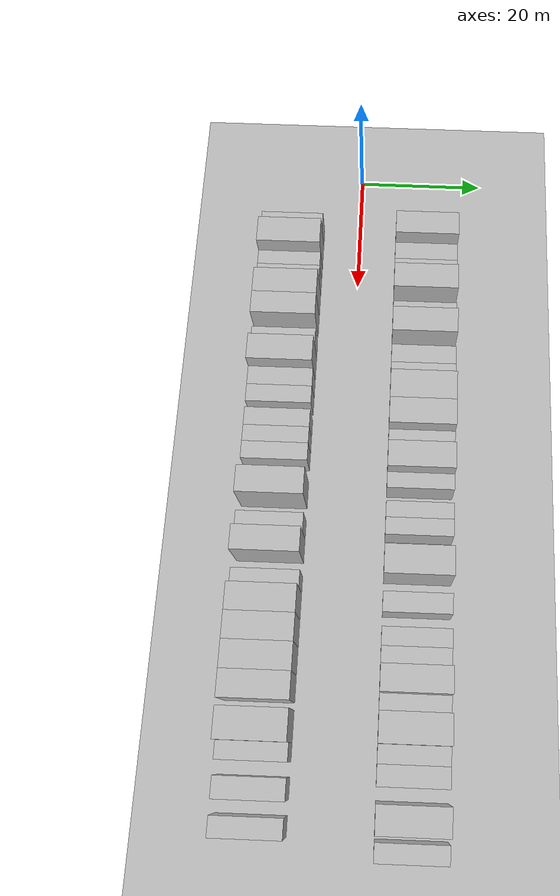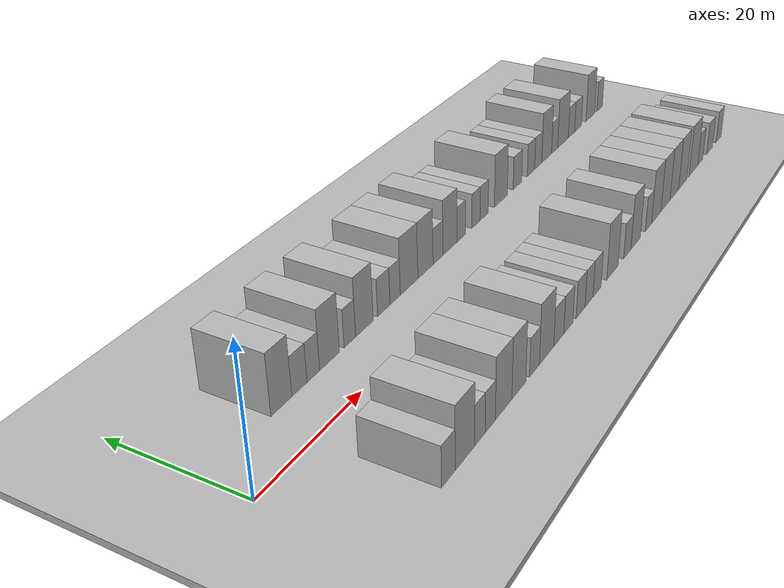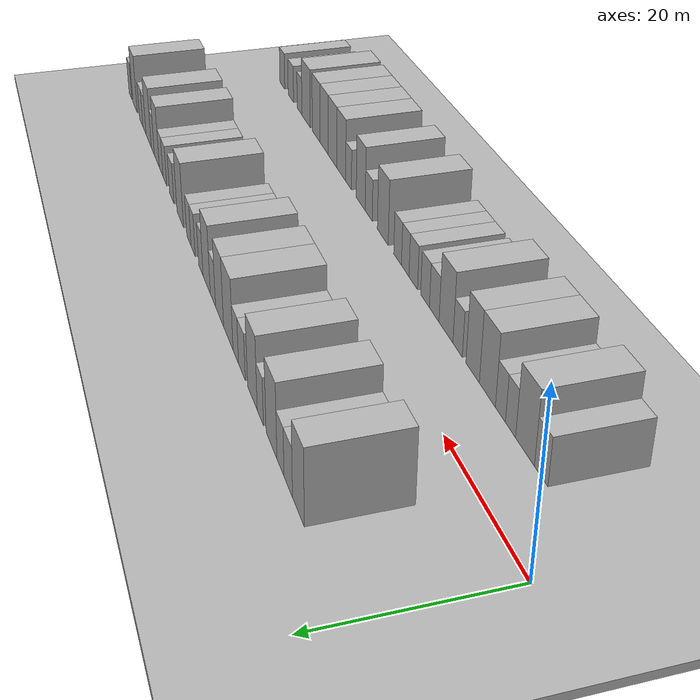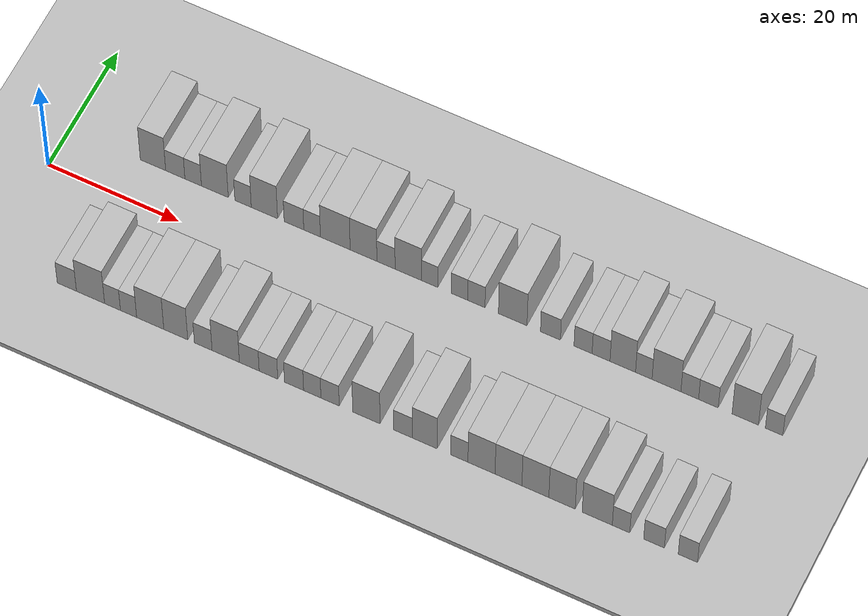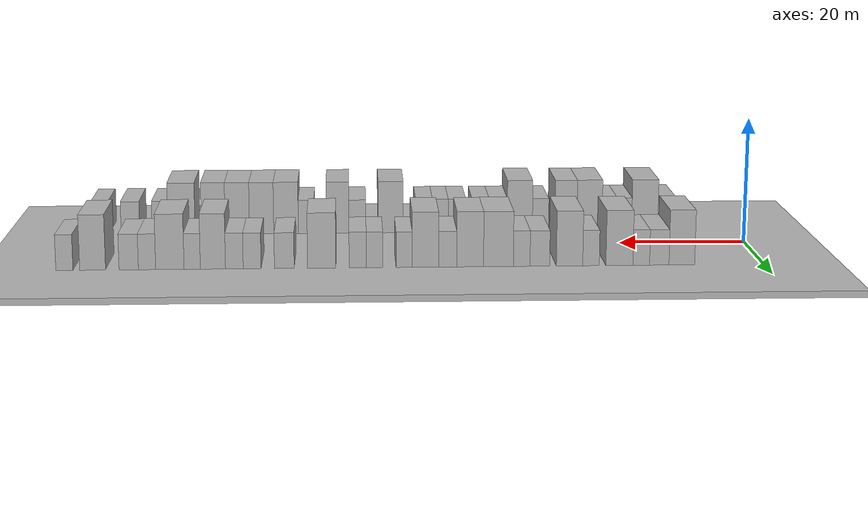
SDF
<sdf version="1.6">
 <world name="default">
  <include><name>ground_plane_1</name><uri>model://HANNAS_ground_plane</uri></include>
  <include>
   <name>ground_plane_2</name>
   <uri>model://HANNAS_ground_plane</uri>
   <pose>100 0 0  0 0 0</pose>
  </include>
  <model name="building_1">
   <static>1</static>
   <pose>12.9525 11.0000 0 0.000000 0.000000 1.570796</pose>
   <link name="link">
    <pose>0 0 4.50 0 0 0</pose>
    <collision name="collision"><geometry><box><size>10.0000 3.9050 9.0000</size></box></geometry></collision>
    <visual name="visual">
     <cast_shadows>0</cast_shadows>
     <geometry><box><size>10.0000 3.9050 9.0000</size></box></geometry>
     <material>
      <script>
       <uri>model://HANNAS_wall/materials/scripts</uri>
       <uri>model://HANNAS_wall/materials/textures</uri>
       <name>vrc/HANNAS_wall</name>
      </script>
     </material>
    </visual>
   </link>
  </model>
  <model name="building_2">
   <static>1</static>
   <pose>16.3775 11.0000 0 0.000000 0.000000 1.570796</pose>
   <link name="link">
    <pose>0 0 3.00 0 0 0</pose>
    <collision name="collision"><geometry><box><size>10.0000 2.9451 6.0000</size></box></geometry></collision>
    <visual name="visual">
     <cast_shadows>0</cast_shadows>
     <geometry><box><size>10.0000 2.9451 6.0000</size></box></geometry>
     <material>
      <script>
       <uri>model://HANNAS_wall/materials/scripts</uri>
       <uri>model://HANNAS_wall/materials/textures</uri>
       <name>vrc/HANNAS_wall</name>
      </script>
     </material>
    </visual>
   </link>
  </model>
  <model name="building_3">
   <static>1</static>
   <pose>19.1167 11.0000 0 0.000000 0.000000 1.570796</pose>
   <link name="link">
    <pose>0 0 3.00 0 0 0</pose>
    <collision name="collision"><geometry><box><size>10.0000 2.5333 6.0000</size></box></geometry></collision>
    <visual name="visual">
     <cast_shadows>0</cast_shadows>
     <geometry><box><size>10.0000 2.5333 6.0000</size></box></geometry>
     <material>
      <script>
       <uri>model://HANNAS_wall/materials/scripts</uri>
       <uri>model://HANNAS_wall/materials/textures</uri>
       <name>vrc/HANNAS_wall</name>
      </script>
     </material>
    </visual>
   </link>
  </model>
  <model name="building_4">
   <static>1</static>
   <pose>22.4323 11.0000 0 0.000000 0.000000 1.570796</pose>
   <link name="link">
    <pose>0 0 4.50 0 0 0</pose>
    <collision name="collision"><geometry><box><size>10.0000 4.0978 9.0000</size></box></geometry></collision>
    <visual name="visual">
     <cast_shadows>0</cast_shadows>
     <geometry><box><size>10.0000 4.0978 9.0000</size></box></geometry>
     <material>
      <script>
       <uri>model://HANNAS_wall/materials/scripts</uri>
       <uri>model://HANNAS_wall/materials/textures</uri>
       <name>vrc/HANNAS_wall</name>
      </script>
     </material>
    </visual>
   </link>
  </model>
  <model name="building_5">
   <static>1</static>
   <pose>26.7356 11.0000 0 0.000000 0.000000 1.570796</pose>
   <link name="link">
    <pose>0 0 3.00 0 0 0</pose>
    <collision name="collision"><geometry><box><size>10.0000 2.5089 6.0000</size></box></geometry></collision>
    <visual name="visual">
     <cast_shadows>0</cast_shadows>
     <geometry><box><size>10.0000 2.5089 6.0000</size></box></geometry>
     <material>
      <script>
       <uri>model://HANNAS_wall/materials/scripts</uri>
       <uri>model://HANNAS_wall/materials/textures</uri>
       <name>vrc/HANNAS_wall</name>
      </script>
     </material>
    </visual>
   </link>
  </model>
  <model name="building_6">
   <static>1</static>
   <pose>29.9888 11.0000 0 0.000000 0.000000 1.570796</pose>
   <link name="link">
    <pose>0 0 4.50 0 0 0</pose>
    <collision name="collision"><geometry><box><size>10.0000 3.9976 9.0000</size></box></geometry></collision>
    <visual name="visual">
     <cast_shadows>0</cast_shadows>
     <geometry><box><size>10.0000 3.9976 9.0000</size></box></geometry>
     <material>
      <script>
       <uri>model://HANNAS_wall/materials/scripts</uri>
       <uri>model://HANNAS_wall/materials/textures</uri>
       <name>vrc/HANNAS_wall</name>
      </script>
     </material>
    </visual>
   </link>
  </model>
  <model name="building_7">
   <static>1</static>
   <pose>34.4759 11.0000 0 0.000000 0.000000 1.570796</pose>
   <link name="link">
    <pose>0 0 3.00 0 0 0</pose>
    <collision name="collision"><geometry><box><size>10.0000 2.9765 6.0000</size></box></geometry></collision>
    <visual name="visual">
     <cast_shadows>0</cast_shadows>
     <geometry><box><size>10.0000 2.9765 6.0000</size></box></geometry>
     <material>
      <script>
       <uri>model://HANNAS_wall/materials/scripts</uri>
       <uri>model://HANNAS_wall/materials/textures</uri>
       <name>vrc/HANNAS_wall</name>
      </script>
     </material>
    </visual>
   </link>
  </model>
  <model name="building_8">
   <static>1</static>
   <pose>37.2237 11.0000 0 0.000000 0.000000 1.570796</pose>
   <link name="link">
    <pose>0 0 3.00 0 0 0</pose>
    <collision name="collision"><geometry><box><size>10.0000 2.5192 6.0000</size></box></geometry></collision>
    <visual name="visual">
     <cast_shadows>0</cast_shadows>
     <geometry><box><size>10.0000 2.5192 6.0000</size></box></geometry>
     <material>
      <script>
       <uri>model://HANNAS_wall/materials/scripts</uri>
       <uri>model://HANNAS_wall/materials/textures</uri>
       <name>vrc/HANNAS_wall</name>
      </script>
     </material>
    </visual>
   </link>
  </model>
  <model name="building_9">
   <static>1</static>
   <pose>40.7293 11.0000 0 0.000000 0.000000 1.570796</pose>
   <link name="link">
    <pose>0 0 4.50 0 0 0</pose>
    <collision name="collision"><geometry><box><size>10.0000 4.4920 9.0000</size></box></geometry></collision>
    <visual name="visual">
     <cast_shadows>0</cast_shadows>
     <geometry><box><size>10.0000 4.4920 9.0000</size></box></geometry>
     <material>
      <script>
       <uri>model://HANNAS_wall/materials/scripts</uri>
       <uri>model://HANNAS_wall/materials/textures</uri>
       <name>vrc/HANNAS_wall</name>
      </script>
     </material>
    </visual>
   </link>
  </model>
  <model name="building_10">
   <static>1</static>
   <pose>44.9919 11.0000 0 0.000000 0.000000 1.570796</pose>
   <link name="link">
    <pose>0 0 4.50 0 0 0</pose>
    <collision name="collision"><geometry><box><size>10.0000 4.0332 9.0000</size></box></geometry></collision>
    <visual name="visual">
     <cast_shadows>0</cast_shadows>
     <geometry><box><size>10.0000 4.0332 9.0000</size></box></geometry>
     <material>
      <script>
       <uri>model://HANNAS_wall/materials/scripts</uri>
       <uri>model://HANNAS_wall/materials/textures</uri>
       <name>vrc/HANNAS_wall</name>
      </script>
     </material>
    </visual>
   </link>
  </model>
  <model name="building_11">
   <static>1</static>
   <pose>48.3769 11.0000 0 0.000000 0.000000 1.570796</pose>
   <link name="link">
    <pose>0 0 3.00 0 0 0</pose>
    <collision name="collision"><geometry><box><size>10.0000 2.7368 6.0000</size></box></geometry></collision>
    <visual name="visual">
     <cast_shadows>0</cast_shadows>
     <geometry><box><size>10.0000 2.7368 6.0000</size></box></geometry>
     <material>
      <script>
       <uri>model://HANNAS_wall/materials/scripts</uri>
       <uri>model://HANNAS_wall/materials/textures</uri>
       <name>vrc/HANNAS_wall</name>
      </script>
     </material>
    </visual>
   </link>
  </model>
  <model name="building_12">
   <static>1</static>
   <pose>51.7380 11.0000 0 0.000000 0.000000 1.570796</pose>
   <link name="link">
    <pose>0 0 4.50 0 0 0</pose>
    <collision name="collision"><geometry><box><size>10.0000 3.9854 9.0000</size></box></geometry></collision>
    <visual name="visual">
     <cast_shadows>0</cast_shadows>
     <geometry><box><size>10.0000 3.9854 9.0000</size></box></geometry>
     <material>
      <script>
       <uri>model://HANNAS_wall/materials/scripts</uri>
       <uri>model://HANNAS_wall/materials/textures</uri>
       <name>vrc/HANNAS_wall</name>
      </script>
     </material>
    </visual>
   </link>
  </model>
  <model name="building_13">
   <static>1</static>
   <pose>54.9431 11.0000 0 0.000000 0.000000 1.570796</pose>
   <link name="link">
    <pose>0 0 3.00 0 0 0</pose>
    <collision name="collision"><geometry><box><size>10.0000 2.4248 6.0000</size></box></geometry></collision>
    <visual name="visual">
     <cast_shadows>0</cast_shadows>
     <geometry><box><size>10.0000 2.4248 6.0000</size></box></geometry>
     <material>
      <script>
       <uri>model://HANNAS_wall/materials/scripts</uri>
       <uri>model://HANNAS_wall/materials/textures</uri>
       <name>vrc/HANNAS_wall</name>
      </script>
     </material>
    </visual>
   </link>
  </model>
  <model name="building_14">
   <static>1</static>
   <pose>59.3850 11.0000 0 0.000000 0.000000 1.570796</pose>
   <link name="link">
    <pose>0 0 3.00 0 0 0</pose>
    <collision name="collision"><geometry><box><size>10.0000 2.4591 6.0000</size></box></geometry></collision>
    <visual name="visual">
     <cast_shadows>0</cast_shadows>
     <geometry><box><size>10.0000 2.4591 6.0000</size></box></geometry>
     <material>
      <script>
       <uri>model://HANNAS_wall/materials/scripts</uri>
       <uri>model://HANNAS_wall/materials/textures</uri>
       <name>vrc/HANNAS_wall</name>
      </script>
     </material>
    </visual>
   </link>
  </model>
  <model name="building_15">
   <static>1</static>
   <pose>61.9111 11.0000 0 0.000000 0.000000 1.570796</pose>
   <link name="link">
    <pose>0 0 3.00 0 0 0</pose>
    <collision name="collision"><geometry><box><size>10.0000 2.5931 6.0000</size></box></geometry></collision>
    <visual name="visual">
     <cast_shadows>0</cast_shadows>
     <geometry><box><size>10.0000 2.5931 6.0000</size></box></geometry>
     <material>
      <script>
       <uri>model://HANNAS_wall/materials/scripts</uri>
       <uri>model://HANNAS_wall/materials/textures</uri>
       <name>vrc/HANNAS_wall</name>
      </script>
     </material>
    </visual>
   </link>
  </model>
  <model name="building_16">
   <static>1</static>
   <pose>67.3301 11.0000 0 0.000000 0.000000 1.570796</pose>
   <link name="link">
    <pose>0 0 4.50 0 0 0</pose>
    <collision name="collision"><geometry><box><size>10.0000 4.2447 9.0000</size></box></geometry></collision>
    <visual name="visual">
     <cast_shadows>0</cast_shadows>
     <geometry><box><size>10.0000 4.2447 9.0000</size></box></geometry>
     <material>
      <script>
       <uri>model://HANNAS_wall/materials/scripts</uri>
       <uri>model://HANNAS_wall/materials/textures</uri>
       <name>vrc/HANNAS_wall</name>
      </script>
     </material>
    </visual>
   </link>
  </model>
  <model name="building_17">
   <static>1</static>
   <pose>72.9326 11.0000 0 0.000000 0.000000 1.570796</pose>
   <link name="link">
    <pose>0 0 3.00 0 0 0</pose>
    <collision name="collision"><geometry><box><size>10.0000 2.9604 6.0000</size></box></geometry></collision>
    <visual name="visual">
     <cast_shadows>0</cast_shadows>
     <geometry><box><size>10.0000 2.9604 6.0000</size></box></geometry>
     <material>
      <script>
       <uri>model://HANNAS_wall/materials/scripts</uri>
       <uri>model://HANNAS_wall/materials/textures</uri>
       <name>vrc/HANNAS_wall</name>
      </script>
     </material>
    </visual>
   </link>
  </model>
  <model name="building_18">
   <static>1</static>
   <pose>77.7498 11.0000 0 0.000000 0.000000 1.570796</pose>
   <link name="link">
    <pose>0 0 3.00 0 0 0</pose>
    <collision name="collision"><geometry><box><size>10.0000 2.6740 6.0000</size></box></geometry></collision>
    <visual name="visual">
     <cast_shadows>0</cast_shadows>
     <geometry><box><size>10.0000 2.6740 6.0000</size></box></geometry>
     <material>
      <script>
       <uri>model://HANNAS_wall/materials/scripts</uri>
       <uri>model://HANNAS_wall/materials/textures</uri>
       <name>vrc/HANNAS_wall</name>
      </script>
     </material>
    </visual>
   </link>
  </model>
  <model name="building_19">
   <static>1</static>
   <pose>80.4077 11.0000 0 0.000000 0.000000 1.570796</pose>
   <link name="link">
    <pose>0 0 3.00 0 0 0</pose>
    <collision name="collision"><geometry><box><size>10.0000 2.6417 6.0000</size></box></geometry></collision>
    <visual name="visual">
     <cast_shadows>0</cast_shadows>
     <geometry><box><size>10.0000 2.6417 6.0000</size></box></geometry>
     <material>
      <script>
       <uri>model://HANNAS_wall/materials/scripts</uri>
       <uri>model://HANNAS_wall/materials/textures</uri>
       <name>vrc/HANNAS_wall</name>
      </script>
     </material>
    </visual>
   </link>
  </model>
  <model name="building_20">
   <static>1</static>
   <pose>83.6070 11.0000 0 0.000000 0.000000 1.570796</pose>
   <link name="link">
    <pose>0 0 4.50 0 0 0</pose>
    <collision name="collision"><geometry><box><size>10.0000 3.7568 9.0000</size></box></geometry></collision>
    <visual name="visual">
     <cast_shadows>0</cast_shadows>
     <geometry><box><size>10.0000 3.7568 9.0000</size></box></geometry>
     <material>
      <script>
       <uri>model://HANNAS_wall/materials/scripts</uri>
       <uri>model://HANNAS_wall/materials/textures</uri>
       <name>vrc/HANNAS_wall</name>
      </script>
     </material>
    </visual>
   </link>
  </model>
  <model name="building_21">
   <static>1</static>
   <pose>86.6971 11.0000 0 0.000000 0.000000 1.570796</pose>
   <link name="link">
    <pose>0 0 3.00 0 0 0</pose>
    <collision name="collision"><geometry><box><size>10.0000 2.4235 6.0000</size></box></geometry></collision>
    <visual name="visual">
     <cast_shadows>0</cast_shadows>
     <geometry><box><size>10.0000 2.4235 6.0000</size></box></geometry>
     <material>
      <script>
       <uri>model://HANNAS_wall/materials/scripts</uri>
       <uri>model://HANNAS_wall/materials/textures</uri>
       <name>vrc/HANNAS_wall</name>
      </script>
     </material>
    </visual>
   </link>
  </model>
  <model name="building_22">
   <static>1</static>
   <pose>90.0248 11.0000 0 0.000000 0.000000 1.570796</pose>
   <link name="link">
    <pose>0 0 4.50 0 0 0</pose>
    <collision name="collision"><geometry><box><size>10.0000 4.2320 9.0000</size></box></geometry></collision>
    <visual name="visual">
     <cast_shadows>0</cast_shadows>
     <geometry><box><size>10.0000 4.2320 9.0000</size></box></geometry>
     <material>
      <script>
       <uri>model://HANNAS_wall/materials/scripts</uri>
       <uri>model://HANNAS_wall/materials/textures</uri>
       <name>vrc/HANNAS_wall</name>
      </script>
     </material>
    </visual>
   </link>
  </model>
  <model name="building_23">
   <static>1</static>
   <pose>93.4346 11.0000 0 0.000000 0.000000 1.570796</pose>
   <link name="link">
    <pose>0 0 3.00 0 0 0</pose>
    <collision name="collision"><geometry><box><size>10.0000 2.5876 6.0000</size></box></geometry></collision>
    <visual name="visual">
     <cast_shadows>0</cast_shadows>
     <geometry><box><size>10.0000 2.5876 6.0000</size></box></geometry>
     <material>
      <script>
       <uri>model://HANNAS_wall/materials/scripts</uri>
       <uri>model://HANNAS_wall/materials/textures</uri>
       <name>vrc/HANNAS_wall</name>
      </script>
     </material>
    </visual>
   </link>
  </model>
  <model name="building_24">
   <static>1</static>
   <pose>96.1664 11.0000 0 0.000000 0.000000 1.570796</pose>
   <link name="link">
    <pose>0 0 3.00 0 0 0</pose>
    <collision name="collision"><geometry><box><size>10.0000 2.8760 6.0000</size></box></geometry></collision>
    <visual name="visual">
     <cast_shadows>0</cast_shadows>
     <geometry><box><size>10.0000 2.8760 6.0000</size></box></geometry>
     <material>
      <script>
       <uri>model://HANNAS_wall/materials/scripts</uri>
       <uri>model://HANNAS_wall/materials/textures</uri>
       <name>vrc/HANNAS_wall</name>
      </script>
     </material>
    </visual>
   </link>
  </model>
  <model name="building_25">
   <static>1</static>
   <pose>101.5281 11.0000 0 0.000000 0.000000 1.570796</pose>
   <link name="link">
    <pose>0 0 4.50 0 0 0</pose>
    <collision name="collision"><geometry><box><size>10.0000 3.8472 9.0000</size></box></geometry></collision>
    <visual name="visual">
     <cast_shadows>0</cast_shadows>
     <geometry><box><size>10.0000 3.8472 9.0000</size></box></geometry>
     <material>
      <script>
       <uri>model://HANNAS_wall/materials/scripts</uri>
       <uri>model://HANNAS_wall/materials/textures</uri>
       <name>vrc/HANNAS_wall</name>
      </script>
     </material>
    </visual>
   </link>
  </model>
  <model name="building_26">
   <static>1</static>
   <pose>105.7245 11.0000 0 0.000000 0.000000 1.570796</pose>
   <link name="link">
    <pose>0 0 3.00 0 0 0</pose>
    <collision name="collision"><geometry><box><size>10.0000 2.5457 6.0000</size></box></geometry></collision>
    <visual name="visual">
     <cast_shadows>0</cast_shadows>
     <geometry><box><size>10.0000 2.5457 6.0000</size></box></geometry>
     <material>
      <script>
       <uri>model://HANNAS_wall/materials/scripts</uri>
       <uri>model://HANNAS_wall/materials/textures</uri>
       <name>vrc/HANNAS_wall</name>
      </script>
     </material>
    </visual>
   </link>
  </model>
  <model name="building_53">
   <static>1</static>
   <pose>11.4603 -11.0000 0 0.000000 0.000000 1.570796</pose>
   <link name="link">
    <pose>0 0 3.00 0 0 0</pose>
    <collision name="collision"><geometry><box><size>10.0000 2.9206 6.0000</size></box></geometry></collision>
    <visual name="visual">
     <cast_shadows>0</cast_shadows>
     <geometry><box><size>10.0000 2.9206 6.0000</size></box></geometry>
     <material>
      <script>
       <uri>model://HANNAS_wall/materials/scripts</uri>
       <uri>model://HANNAS_wall/materials/textures</uri>
       <name>vrc/HANNAS_wall</name>
      </script>
     </material>
    </visual>
   </link>
  </model>
  <model name="building_54">
   <static>1</static>
   <pose>15.0607 -11.0000 0 0.000000 0.000000 1.570796</pose>
   <link name="link">
    <pose>0 0 4.50 0 0 0</pose>
    <collision name="collision"><geometry><box><size>10.0000 4.2802 9.0000</size></box></geometry></collision>
    <visual name="visual">
     <cast_shadows>0</cast_shadows>
     <geometry><box><size>10.0000 4.2802 9.0000</size></box></geometry>
     <material>
      <script>
       <uri>model://HANNAS_wall/materials/scripts</uri>
       <uri>model://HANNAS_wall/materials/textures</uri>
       <name>vrc/HANNAS_wall</name>
      </script>
     </material>
    </visual>
   </link>
  </model>
  <model name="building_55">
   <static>1</static>
   <pose>18.4022 -11.0000 0 0.000000 0.000000 1.570796</pose>
   <link name="link">
    <pose>0 0 3.00 0 0 0</pose>
    <collision name="collision"><geometry><box><size>10.0000 2.4027 6.0000</size></box></geometry></collision>
    <visual name="visual">
     <cast_shadows>0</cast_shadows>
     <geometry><box><size>10.0000 2.4027 6.0000</size></box></geometry>
     <material>
      <script>
       <uri>model://HANNAS_wall/materials/scripts</uri>
       <uri>model://HANNAS_wall/materials/textures</uri>
       <name>vrc/HANNAS_wall</name>
      </script>
     </material>
    </visual>
   </link>
  </model>
  <model name="building_56">
   <static>1</static>
   <pose>20.8287 -11.0000 0 0.000000 0.000000 1.570796</pose>
   <link name="link">
    <pose>0 0 3.00 0 0 0</pose>
    <collision name="collision"><geometry><box><size>10.0000 2.4503 6.0000</size></box></geometry></collision>
    <visual name="visual">
     <cast_shadows>0</cast_shadows>
     <geometry><box><size>10.0000 2.4503 6.0000</size></box></geometry>
     <material>
      <script>
       <uri>model://HANNAS_wall/materials/scripts</uri>
       <uri>model://HANNAS_wall/materials/textures</uri>
       <name>vrc/HANNAS_wall</name>
      </script>
     </material>
    </visual>
   </link>
  </model>
  <model name="building_57">
   <static>1</static>
   <pose>24.1059 -11.0000 0 0.000000 0.000000 1.570796</pose>
   <link name="link">
    <pose>0 0 4.50 0 0 0</pose>
    <collision name="collision"><geometry><box><size>10.0000 4.1041 9.0000</size></box></geometry></collision>
    <visual name="visual">
     <cast_shadows>0</cast_shadows>
     <geometry><box><size>10.0000 4.1041 9.0000</size></box></geometry>
     <material>
      <script>
       <uri>model://HANNAS_wall/materials/scripts</uri>
       <uri>model://HANNAS_wall/materials/textures</uri>
       <name>vrc/HANNAS_wall</name>
      </script>
     </material>
    </visual>
   </link>
  </model>
  <model name="building_58">
   <static>1</static>
   <pose>27.9636 -11.0000 0 0.000000 0.000000 1.570796</pose>
   <link name="link">
    <pose>0 0 4.50 0 0 0</pose>
    <collision name="collision"><geometry><box><size>10.0000 3.6113 9.0000</size></box></geometry></collision>
    <visual name="visual">
     <cast_shadows>0</cast_shadows>
     <geometry><box><size>10.0000 3.6113 9.0000</size></box></geometry>
     <material>
      <script>
       <uri>model://HANNAS_wall/materials/scripts</uri>
       <uri>model://HANNAS_wall/materials/textures</uri>
       <name>vrc/HANNAS_wall</name>
      </script>
     </material>
    </visual>
   </link>
  </model>
  <model name="building_59">
   <static>1</static>
   <pose>32.0964 -11.0000 0 0.000000 0.000000 1.570796</pose>
   <link name="link">
    <pose>0 0 3.00 0 0 0</pose>
    <collision name="collision"><geometry><box><size>10.0000 2.6542 6.0000</size></box></geometry></collision>
    <visual name="visual">
     <cast_shadows>0</cast_shadows>
     <geometry><box><size>10.0000 2.6542 6.0000</size></box></geometry>
     <material>
      <script>
       <uri>model://HANNAS_wall/materials/scripts</uri>
       <uri>model://HANNAS_wall/materials/textures</uri>
       <name>vrc/HANNAS_wall</name>
      </script>
     </material>
    </visual>
   </link>
  </model>
  <model name="building_60">
   <static>1</static>
   <pose>35.4741 -11.0000 0 0.000000 0.000000 1.570796</pose>
   <link name="link">
    <pose>0 0 4.50 0 0 0</pose>
    <collision name="collision"><geometry><box><size>10.0000 4.1012 9.0000</size></box></geometry></collision>
    <visual name="visual">
     <cast_shadows>0</cast_shadows>
     <geometry><box><size>10.0000 4.1012 9.0000</size></box></geometry>
     <material>
      <script>
       <uri>model://HANNAS_wall/materials/scripts</uri>
       <uri>model://HANNAS_wall/materials/textures</uri>
       <name>vrc/HANNAS_wall</name>
      </script>
     </material>
    </visual>
   </link>
  </model>
  <model name="building_61">
   <static>1</static>
   <pose>39.0038 -11.0000 0 0.000000 0.000000 1.570796</pose>
   <link name="link">
    <pose>0 0 3.00 0 0 0</pose>
    <collision name="collision"><geometry><box><size>10.0000 2.9583 6.0000</size></box></geometry></collision>
    <visual name="visual">
     <cast_shadows>0</cast_shadows>
     <geometry><box><size>10.0000 2.9583 6.0000</size></box></geometry>
     <material>
      <script>
       <uri>model://HANNAS_wall/materials/scripts</uri>
       <uri>model://HANNAS_wall/materials/textures</uri>
       <name>vrc/HANNAS_wall</name>
      </script>
     </material>
    </visual>
   </link>
  </model>
  <model name="building_62">
   <static>1</static>
   <pose>41.8747 -11.0000 0 0.000000 0.000000 1.570796</pose>
   <link name="link">
    <pose>0 0 3.00 0 0 0</pose>
    <collision name="collision"><geometry><box><size>10.0000 2.7836 6.0000</size></box></geometry></collision>
    <visual name="visual">
     <cast_shadows>0</cast_shadows>
     <geometry><box><size>10.0000 2.7836 6.0000</size></box></geometry>
     <material>
      <script>
       <uri>model://HANNAS_wall/materials/scripts</uri>
       <uri>model://HANNAS_wall/materials/textures</uri>
       <name>vrc/HANNAS_wall</name>
      </script>
     </material>
    </visual>
   </link>
  </model>
  <model name="building_63">
   <static>1</static>
   <pose>45.6925 -11.0000 0 0.000000 0.000000 1.570796</pose>
   <link name="link">
    <pose>0 0 3.00 0 0 0</pose>
    <collision name="collision"><geometry><box><size>10.0000 2.8519 6.0000</size></box></geometry></collision>
    <visual name="visual">
     <cast_shadows>0</cast_shadows>
     <geometry><box><size>10.0000 2.8519 6.0000</size></box></geometry>
     <material>
      <script>
       <uri>model://HANNAS_wall/materials/scripts</uri>
       <uri>model://HANNAS_wall/materials/textures</uri>
       <name>vrc/HANNAS_wall</name>
      </script>
     </material>
    </visual>
   </link>
  </model>
  <model name="building_64">
   <static>1</static>
   <pose>48.4052 -11.0000 0 0.000000 0.000000 1.570796</pose>
   <link name="link">
    <pose>0 0 3.00 0 0 0</pose>
    <collision name="collision"><geometry><box><size>10.0000 2.5735 6.0000</size></box></geometry></collision>
    <visual name="visual">
     <cast_shadows>0</cast_shadows>
     <geometry><box><size>10.0000 2.5735 6.0000</size></box></geometry>
     <material>
      <script>
       <uri>model://HANNAS_wall/materials/scripts</uri>
       <uri>model://HANNAS_wall/materials/textures</uri>
       <name>vrc/HANNAS_wall</name>
      </script>
     </material>
    </visual>
   </link>
  </model>
  <model name="building_65">
   <static>1</static>
   <pose>51.0512 -11.0000 0 0.000000 0.000000 1.570796</pose>
   <link name="link">
    <pose>0 0 3.00 0 0 0</pose>
    <collision name="collision"><geometry><box><size>10.0000 2.7186 6.0000</size></box></geometry></collision>
    <visual name="visual">
     <cast_shadows>0</cast_shadows>
     <geometry><box><size>10.0000 2.7186 6.0000</size></box></geometry>
     <material>
      <script>
       <uri>model://HANNAS_wall/materials/scripts</uri>
       <uri>model://HANNAS_wall/materials/textures</uri>
       <name>vrc/HANNAS_wall</name>
      </script>
     </material>
    </visual>
   </link>
  </model>
  <model name="building_66">
   <static>1</static>
   <pose>56.4374 -11.0000 0 0.000000 0.000000 1.570796</pose>
   <link name="link">
    <pose>0 0 4.50 0 0 0</pose>
    <collision name="collision"><geometry><box><size>10.0000 4.0537 9.0000</size></box></geometry></collision>
    <visual name="visual">
     <cast_shadows>0</cast_shadows>
     <geometry><box><size>10.0000 4.0537 9.0000</size></box></geometry>
     <material>
      <script>
       <uri>model://HANNAS_wall/materials/scripts</uri>
       <uri>model://HANNAS_wall/materials/textures</uri>
       <name>vrc/HANNAS_wall</name>
      </script>
     </material>
    </visual>
   </link>
  </model>
  <model name="building_67">
   <static>1</static>
   <pose>61.8517 -11.0000 0 0.000000 0.000000 1.570796</pose>
   <link name="link">
    <pose>0 0 3.00 0 0 0</pose>
    <collision name="collision"><geometry><box><size>10.0000 2.7749 6.0000</size></box></geometry></collision>
    <visual name="visual">
     <cast_shadows>0</cast_shadows>
     <geometry><box><size>10.0000 2.7749 6.0000</size></box></geometry>
     <material>
      <script>
       <uri>model://HANNAS_wall/materials/scripts</uri>
       <uri>model://HANNAS_wall/materials/textures</uri>
       <name>vrc/HANNAS_wall</name>
      </script>
     </material>
    </visual>
   </link>
  </model>
  <model name="building_68">
   <static>1</static>
   <pose>65.0686 -11.0000 0 0.000000 0.000000 1.570796</pose>
   <link name="link">
    <pose>0 0 4.50 0 0 0</pose>
    <collision name="collision"><geometry><box><size>10.0000 3.6590 9.0000</size></box></geometry></collision>
    <visual name="visual">
     <cast_shadows>0</cast_shadows>
     <geometry><box><size>10.0000 3.6590 9.0000</size></box></geometry>
     <material>
      <script>
       <uri>model://HANNAS_wall/materials/scripts</uri>
       <uri>model://HANNAS_wall/materials/textures</uri>
       <name>vrc/HANNAS_wall</name>
      </script>
     </material>
    </visual>
   </link>
  </model>
  <model name="building_69">
   <static>1</static>
   <pose>70.1582 -11.0000 0 0.000000 0.000000 1.570796</pose>
   <link name="link">
    <pose>0 0 3.00 0 0 0</pose>
    <collision name="collision"><geometry><box><size>10.0000 2.5201 6.0000</size></box></geometry></collision>
    <visual name="visual">
     <cast_shadows>0</cast_shadows>
     <geometry><box><size>10.0000 2.5201 6.0000</size></box></geometry>
     <material>
      <script>
       <uri>model://HANNAS_wall/materials/scripts</uri>
       <uri>model://HANNAS_wall/materials/textures</uri>
       <name>vrc/HANNAS_wall</name>
      </script>
     </material>
    </visual>
   </link>
  </model>
  <model name="building_70">
   <static>1</static>
   <pose>73.4085 -11.0000 0 0.000000 0.000000 1.570796</pose>
   <link name="link">
    <pose>0 0 4.50 0 0 0</pose>
    <collision name="collision"><geometry><box><size>10.0000 3.9804 9.0000</size></box></geometry></collision>
    <visual name="visual">
     <cast_shadows>0</cast_shadows>
     <geometry><box><size>10.0000 3.9804 9.0000</size></box></geometry>
     <material>
      <script>
       <uri>model://HANNAS_wall/materials/scripts</uri>
       <uri>model://HANNAS_wall/materials/textures</uri>
       <name>vrc/HANNAS_wall</name>
      </script>
     </material>
    </visual>
   </link>
  </model>
  <model name="building_71">
   <static>1</static>
   <pose>77.3559 -11.0000 0 0.000000 0.000000 1.570796</pose>
   <link name="link">
    <pose>0 0 4.50 0 0 0</pose>
    <collision name="collision"><geometry><box><size>10.0000 3.9144 9.0000</size></box></geometry></collision>
    <visual name="visual">
     <cast_shadows>0</cast_shadows>
     <geometry><box><size>10.0000 3.9144 9.0000</size></box></geometry>
     <material>
      <script>
       <uri>model://HANNAS_wall/materials/scripts</uri>
       <uri>model://HANNAS_wall/materials/textures</uri>
       <name>vrc/HANNAS_wall</name>
      </script>
     </material>
    </visual>
   </link>
  </model>
  <model name="building_72">
   <static>1</static>
   <pose>81.2780 -11.0000 0 0.000000 0.000000 1.570796</pose>
   <link name="link">
    <pose>0 0 4.50 0 0 0</pose>
    <collision name="collision"><geometry><box><size>10.0000 3.9299 9.0000</size></box></geometry></collision>
    <visual name="visual">
     <cast_shadows>0</cast_shadows>
     <geometry><box><size>10.0000 3.9299 9.0000</size></box></geometry>
     <material>
      <script>
       <uri>model://HANNAS_wall/materials/scripts</uri>
       <uri>model://HANNAS_wall/materials/textures</uri>
       <name>vrc/HANNAS_wall</name>
      </script>
     </material>
    </visual>
   </link>
  </model>
  <model name="building_73">
   <static>1</static>
   <pose>85.1622 -11.0000 0 0.000000 0.000000 1.570796</pose>
   <link name="link">
    <pose>0 0 4.50 0 0 0</pose>
    <collision name="collision"><geometry><box><size>10.0000 3.8385 9.0000</size></box></geometry></collision>
    <visual name="visual">
     <cast_shadows>0</cast_shadows>
     <geometry><box><size>10.0000 3.8385 9.0000</size></box></geometry>
     <material>
      <script>
       <uri>model://HANNAS_wall/materials/scripts</uri>
       <uri>model://HANNAS_wall/materials/textures</uri>
       <name>vrc/HANNAS_wall</name>
      </script>
     </material>
    </visual>
   </link>
  </model>
  <model name="building_74">
   <static>1</static>
   <pose>90.2686 -11.0000 0 0.000000 0.000000 1.570796</pose>
   <link name="link">
    <pose>0 0 4.50 0 0 0</pose>
    <collision name="collision"><geometry><box><size>10.0000 4.3743 9.0000</size></box></geometry></collision>
    <visual name="visual">
     <cast_shadows>0</cast_shadows>
     <geometry><box><size>10.0000 4.3743 9.0000</size></box></geometry>
     <material>
      <script>
       <uri>model://HANNAS_wall/materials/scripts</uri>
       <uri>model://HANNAS_wall/materials/textures</uri>
       <name>vrc/HANNAS_wall</name>
      </script>
     </material>
    </visual>
   </link>
  </model>
  <model name="building_75">
   <static>1</static>
   <pose>93.7228 -11.0000 0 0.000000 0.000000 1.570796</pose>
   <link name="link">
    <pose>0 0 3.00 0 0 0</pose>
    <collision name="collision"><geometry><box><size>10.0000 2.5340 6.0000</size></box></geometry></collision>
    <visual name="visual">
     <cast_shadows>0</cast_shadows>
     <geometry><box><size>10.0000 2.5340 6.0000</size></box></geometry>
     <material>
      <script>
       <uri>model://HANNAS_wall/materials/scripts</uri>
       <uri>model://HANNAS_wall/materials/textures</uri>
       <name>vrc/HANNAS_wall</name>
      </script>
     </material>
    </visual>
   </link>
  </model>
  <model name="building_76">
   <static>1</static>
   <pose>98.4834 -11.0000 0 0.000000 0.000000 1.570796</pose>
   <link name="link">
    <pose>0 0 3.00 0 0 0</pose>
    <collision name="collision"><geometry><box><size>10.0000 2.9871 6.0000</size></box></geometry></collision>
    <visual name="visual">
     <cast_shadows>0</cast_shadows>
     <geometry><box><size>10.0000 2.9871 6.0000</size></box></geometry>
     <material>
      <script>
       <uri>model://HANNAS_wall/materials/scripts</uri>
       <uri>model://HANNAS_wall/materials/textures</uri>
       <name>vrc/HANNAS_wall</name>
      </script>
     </material>
    </visual>
   </link>
  </model>
  <model name="building_77">
   <static>1</static>
   <pose>103.3675 -11.0000 0 0.000000 0.000000 1.570796</pose>
   <link name="link">
    <pose>0 0 3.00 0 0 0</pose>
    <collision name="collision"><geometry><box><size>10.0000 2.7812 6.0000</size></box></geometry></collision>
    <visual name="visual">
     <cast_shadows>0</cast_shadows>
     <geometry><box><size>10.0000 2.7812 6.0000</size></box></geometry>
     <material>
      <script>
       <uri>model://HANNAS_wall/materials/scripts</uri>
       <uri>model://HANNAS_wall/materials/textures</uri>
       <name>vrc/HANNAS_wall</name>
      </script>
     </material>
    </visual>
   </link>
  </model>
 </world>
</sdf>
